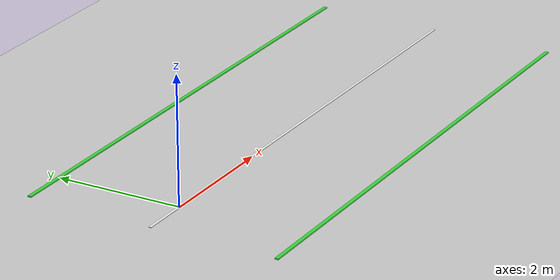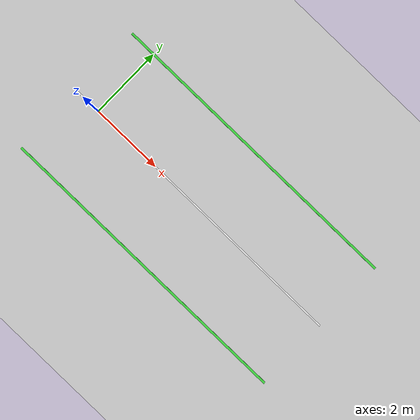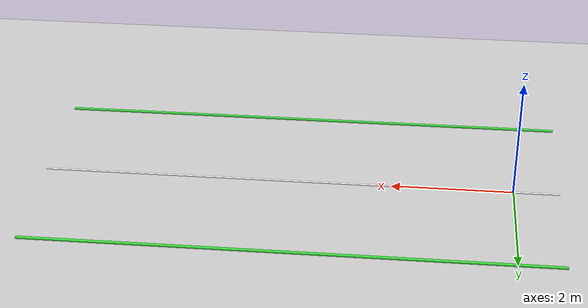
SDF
<?xml version="1.0"?>
<sdf version="1.6">
  <world name="bac_appearing_obstacle">
    <physics name="default_physics" type="ode">
      <real_time_update_rate>1000</real_time_update_rate>
      <max_step_size>0.001</max_step_size>
    </physics>

    <include>
      <uri>model://sun</uri>
    </include>
    <include>
      <uri>model://ground_plane</uri>
    </include>

    <!-- High-contrast lane markers make the detour visible in the video. -->
    <model name="center_line">
      <static>true</static>
      <pose>3.5 0 0.006 0 0 0</pose>
      <link name="link">
        <visual name="visual">
          <geometry><box><size>8.5 0.04 0.01</size></box></geometry>
          <material><ambient>0.95 0.95 0.95 1</ambient><diffuse>0.95 0.95 0.95 1</diffuse></material>
        </visual>
      </link>
    </model>
    <model name="left_boundary">
      <static>true</static>
      <pose>3.5 2.0 0.01 0 0 0</pose>
      <link name="link">
        <visual name="visual">
          <geometry><box><size>8.5 0.06 0.02</size></box></geometry>
          <material><ambient>0.25 0.85 0.25 1</ambient><diffuse>0.25 0.85 0.25 1</diffuse></material>
        </visual>
      </link>
    </model>
    <model name="right_boundary">
      <static>true</static>
      <pose>3.5 -2.0 0.01 0 0 0</pose>
      <link name="link">
        <visual name="visual">
          <geometry><box><size>8.5 0.06 0.02</size></box></geometry>
          <material><ambient>0.25 0.85 0.25 1</ambient><diffuse>0.25 0.85 0.25 1</diffuse></material>
        </visual>
      </link>
    </model>

    <!-- A fixed ROS camera supplies frames without requiring gzclient/X11. -->
    <model name="overhead_camera">
      <static>true</static>
      <pose>4.5 0 14.0 0 1.57079632679 0</pose>
      <link name="camera_link">
        <sensor name="camera" type="camera">
          <always_on>true</always_on>
          <update_rate>12</update_rate>
          <visualize>true</visualize>
          <camera>
            <horizontal_fov>1.15</horizontal_fov>
            <image><width>960</width><height>540</height><format>R8G8B8</format></image>
            <clip><near>0.1</near><far>30.0</far></clip>
          </camera>
          <plugin name="overhead_camera_ros" filename="libgazebo_ros_camera.so">
            <ros>
              <namespace>/demo_camera</namespace>
            </ros>
            <camera_name>overhead</camera_name>
            <frame_name>overhead_camera</frame_name>
          </plugin>
        </sensor>
      </link>
    </model>

    <scene>
      <ambient>0.65 0.65 0.65 1</ambient>
      <background>0.12 0.15 0.20 1</background>
      <shadows>false</shadows>
    </scene>
  </world>
</sdf>
